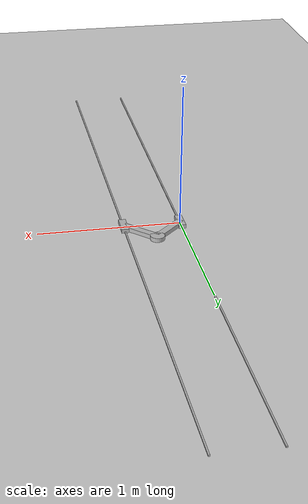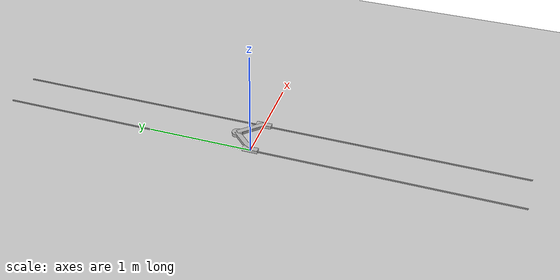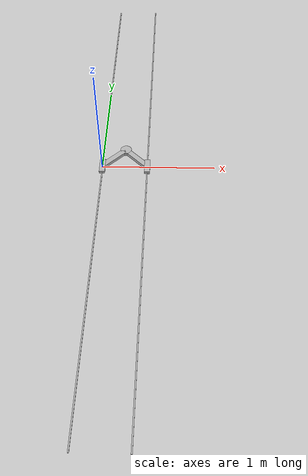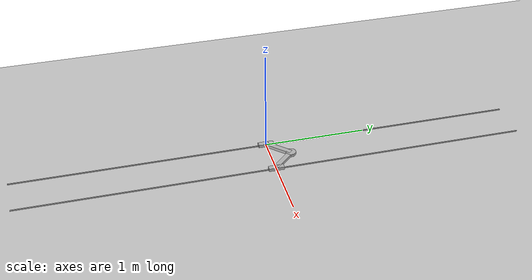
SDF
<?xml version="1.0" ?>
<sdf version="1.7">
  <world name="biglide_world">

    <physics name="1ms" type="ignored">
      <max_step_size>0.001</max_step_size>
      <real_time_factor>1.0</real_time_factor>
    </physics>
    <plugin
      filename="ignition-gazebo-physics-system"
      name="gz::sim::systems::Physics">
    </plugin>
    <plugin
      filename="ignition-gazebo-user-commands-system"
      name="gz::sim::systems::UserCommands">
    </plugin>
    <plugin
      filename="ignition-gazebo-scene-broadcaster-system"
      name="gz::sim::systems::SceneBroadcaster">
    </plugin>

    <light type="directional" name="sun">
      <cast_shadows>true</cast_shadows>
      <pose>0 0 10 0 0 0</pose>
      <diffuse>1 1 1 1</diffuse>
      <specular>0.5 0.5 0.5 1</specular>
      <attenuation>
        <range>1000</range>
        <constant>0.9</constant>
        <linear>0.01</linear>
        <quadratic>0.001</quadratic>
      </attenuation>
      <direction>-0.5 0.1 -0.9</direction>
    </light>

    <model name="ground_plane">
      <static>true</static>
      <link name="link">
        <collision name="collision">
          <geometry>
            <plane>
              <normal>0 0 1</normal>
              <size>100 100</size>
            </plane>
          </geometry>
        </collision>
        <visual name="visual">
          <geometry>
            <plane>
              <normal>0 0 1</normal>
              <size>100 100</size>
            </plane>
          </geometry>
          <material>
            <ambient>0.8 0.8 0.8 1</ambient>
            <diffuse>0.8 0.8 0.8 1</diffuse>
            <specular>0.8 0.8 0.8 1</specular>
          </material>
        </visual>
      </link>
    </model>

    <model name="biglide">
      <pose>0 0 0.0  0 0 0</pose>
      <self_collide>false</self_collide>
      <link name="leftRail">
        <pose>0 0 0  0 0 0</pose>
        <inertial>
          <mass>1.0</mass>
          <inertia>
            <ixx>1e-5</ixx>
            <iyy>1e-5</iyy>
            <izz>1e-5</izz>
            <ixy>0.0</ixy>
            <ixz>0.0</ixz>
            <iyz>0.0</iyz>
          </inertia>
        </inertial>
        <gravity>0</gravity>
        <visual name="leftRailVisual">
          <geometry>
            <box>
              <size>0.01 5.0 0.01</size>
            </box>
          </geometry>
        </visual>
      </link>
      <link name="rightRail">
        <pose>0.4 0 0  0 0 0</pose>
        <inertial>
          <mass>1.0</mass>
          <inertia>
            <ixx>1e-5</ixx>
            <iyy>1e-5</iyy>
            <izz>1e-5</izz>
            <ixy>0.0</ixy>
            <ixz>0.0</ixz>
            <iyz>0.0</iyz>
          </inertia>
        </inertial>
        <gravity>0</gravity>
        <visual name="rightRailVisual">
          <geometry>
            <box>
              <size>0.01 5.0 0.01</size>
            </box>
          </geometry>
        </visual>
      </link>
      <link name="leftFoot">
        <pose>0 0 0  0 0 0</pose>
        <inertial>
          <mass>1.0</mass>
          <inertia>
            <ixx>1e-5</ixx>
            <iyy>1e-5</iyy>
            <izz>1e-5</izz>
            <ixy>0.0</ixy>
            <ixz>0.0</ixz>
            <iyz>0.0</iyz>
          </inertia>
        </inertial>
        <gravity>0</gravity>
        <visual name="leftBoxVisual">
          <geometry>
            <box>
              <size>0.05 0.15 0.05</size>
            </box>
          </geometry>
        </visual>
      </link>
      <link name="rightFoot">
        <pose>0.4 0 0  0 0 0</pose>
        <inertial>
          <mass>1.0</mass>
          <inertia>
            <ixx>1e-5</ixx>
            <iyy>1e-5</iyy>
            <izz>1e-5</izz>
            <ixy>0.0</ixy>
            <ixz>0.0</ixz>
            <iyz>0.0</iyz>
          </inertia>
        </inertial>
        <gravity>0</gravity>
        <visual name="rightBoxVisual">
          <geometry>
            <box>
              <size>0.05 0.15 0.05</size>
            </box>
          </geometry>
        </visual>
      </link>
      <link name="leftArm">
        <pose>0.0 0.0 0  0 0 0.7853981</pose>
        <inertial>
          <pose>0.2828427 0.0 0  0 0 0.0</pose>
          <mass>1.0</mass>
          <inertia>
            <ixx>1e-5</ixx>
            <iyy>1e-5</iyy>
            <izz>1e-5</izz>
            <ixy>0.0</ixy>
            <ixz>0.0</ixz>
            <iyz>0.0</iyz>
          </inertia>
        </inertial>
        <gravity>0</gravity>
        <visual name="leftArmVisual">
          <pose>0.14142135623 0.0 0  0 0 0.0</pose>
          <geometry>
            <box>
              <size>0.2828427 0.05 0.05</size>
            </box>
          </geometry>
        </visual>
      </link>
      <link name="rightArm">
        <pose>0.4 0.0 0 0 0 2.3561949</pose>
        <inertial>
          <pose>0.2828427 0.0 0  0 0 0.0</pose>
          <mass>1.0</mass>
          <inertia>
            <ixx>1e-5</ixx>
            <iyy>1e-5</iyy>
            <izz>1e-5</izz>
            <ixy>0.0</ixy>
            <ixz>0.0</ixz>
            <iyz>0.0</iyz>
          </inertia>
        </inertial>
        <gravity>0</gravity>
        <visual name="rightArmVisual">
          <pose>0.14142135623 0.0 0 0 0 0.0 </pose>
          <geometry>
            <box>
              <size>0.2828427 0.05 0.05</size>
            </box>
          </geometry>
        </visual>
      </link>
      <link name="endEffector">
        <pose>0.2 0.2 0  0 0 0</pose>
        <inertial>
          <mass>1.0</mass>
          <inertia>
            <ixx>1e-5</ixx>
            <iyy>1e-5</iyy>
            <izz>1e-5</izz>
            <ixy>0.0</ixy>
            <ixz>0.0</ixz>
            <iyz>0.0</iyz>
          </inertia>
        </inertial>
        <gravity>0</gravity>
        <visual name="endEffectorVisual">
          <geometry>
            <cylinder>
              <radius>0.05</radius>
              <length>0.05</length>
            </cylinder>
          </geometry>
        </visual>
      </link>
      <joint name="jointLeftRail" type="fixed">
        <pose>0 0 0 0 0 0</pose>
        <parent>world</parent>
        <child>leftRail</child>
      </joint>
      <joint name="A11" type="prismatic">
        <pose>0 0 0 0 0 0</pose>
        <parent>leftRail</parent>
        <child>leftFoot</child>
        <axis>
          <xyz>0 1 0</xyz>
          <limit>
          <lower>-1</lower>
          <upper>1</upper>
        </limit>
        </axis>

      </joint>
      <joint name="A21" type="prismatic">
        <pose>0 0 0 0 0 0</pose>
        <parent>rightFoot</parent>
        <child>rightRail</child>
        <axis>
          <xyz>0 1 0</xyz>
          <limit>
          <lower>-1</lower>
          <upper>1</upper>
        </limit>
        </axis>

      </joint>
      <joint name="A12" type="revolute">
        <pose>0 0 0 0 0 0</pose>
        <parent>leftFoot</parent>
        <child>leftArm</child>
        <axis>
          <xyz>0 0 1</xyz>
        </axis>
      </joint>
      <joint name="A22" type="revolute">
        <pose>0.0 0 0 0 0 0</pose>
        <parent>rightArm</parent>
        <child>rightFoot</child>
        <axis>
          <xyz>0 0 1</xyz>
        </axis>
      </joint>
      <joint name="A13" type="revolute">
        <parent>endEffector</parent>
        <child>rightArm</child>
        <pose>0 0 0 0 0 0</pose>
        <axis>
          <xyz>0 0 1</xyz>
        </axis>
      </joint>
      <joint name="jointEndEffector" type="fixed">
        <parent>leftArm</parent>
        <child>endEffector</child>
      </joint>

      <!-- this one below is changed to a plugin -->

      <link name="rightRailDummy"/>

      <joint name="rightRailJoint" type="fixed">
        <parent>world</parent>
        <child>rightRailDummy</child>
      </joint>

      <!-- custom plugin, simpler but custom -->

      <!-- existing plugin, hope this model is spawned under this name -->
      <plugin filename="ignition-gazebo-detachable-joint-system"
              name="ignition::gazebo::systems::DetachableJoint">
        <parent_link>rightRailDummy</parent_link>
        <child_model>biglide</child_model>
        <child_link>rightRail</child_link>
        <attach_topic>/close_loop</attach_topic>
        <detach_topic>/open_loop</detach_topic>
        <output_topic>/loop_state</output_topic>
      </plugin>

      <plugin filename="ignition-gazebo-apply-joint-force-system"
              name="gz::sim::systems::ApplyJointForce">
        <joint_name>A11</joint_name>
      </plugin>

      <plugin filename="ignition-gazebo-apply-joint-force-system"
              name="gz::sim::systems::ApplyJointForce">
        <joint_name>A21</joint_name>
      </plugin>
    </model>
  </world>
</sdf>
